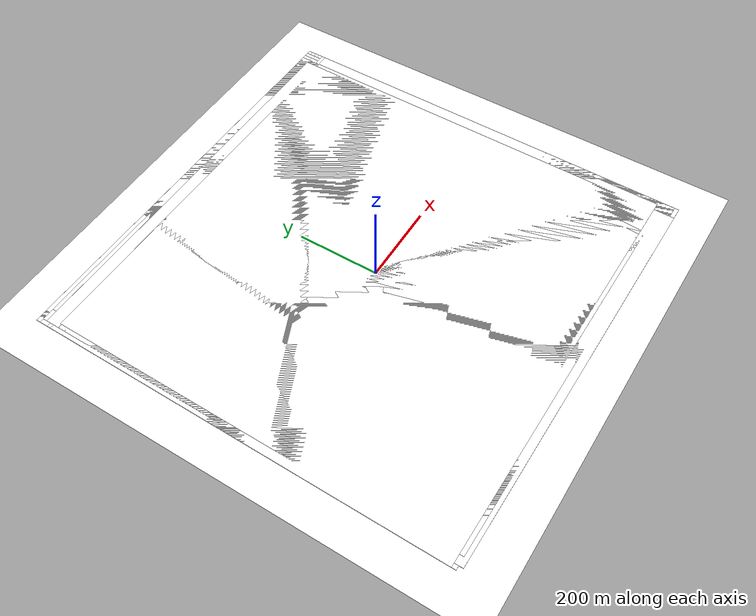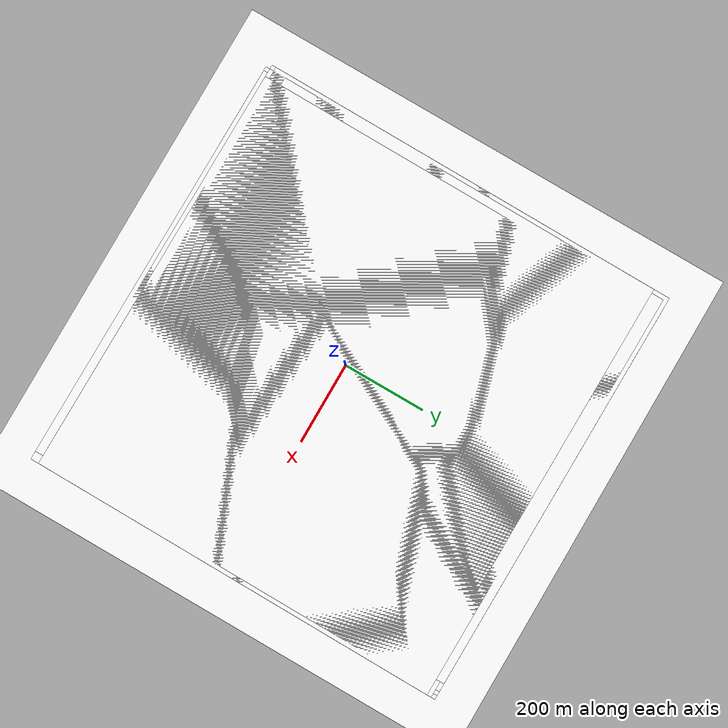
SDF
<sdf version="1.9">
 <world name="cugo_v3_in_forest">
  <plugin filename="ignition-gazebo-physics-system" name="ignition::gazebo::systems::Physics"/>
  <plugin filename="ignition-gazebo-sensors-system" name="ignition::gazebo::systems::Sensors">
   <render_engine>ogre2</render_engine>
  </plugin>
  <plugin filename="ignition-gazebo-scene-broadcaster-system" name="ignition::gazebo::systems::SceneBroadcaster"/>
  <plugin filename="ignition-gazebo-user-commands-system" name="ignition::gazebo::systems::UserCommands"/>
  <scene>
   <ambient>1 1 1 1</ambient>
   <background>0.3 0.7 0.9 1</background>
   <shadows>0</shadows>
   <grid>1</grid>
  </scene>
  <model name="ground_plane">
   <static>1</static>
   <link name="link">
    <collision name="collision">
     <geometry><plane><normal>0 0 1</normal><size>1 1</size></plane></geometry>
    </collision>
   </link>
  </model>
  <include>
   <uri>https://fuel.ignitionrobotics.org/1.0/hexarotor/models/grasspatch</uri>
   <name>grasspatch_0</name>
   <pose>0 0 -0.03 0 -0 -0.006057</pose>
  </include>
  <include>
   <uri>https://fuel.ignitionrobotics.org/1.0/hexarotor/models/grasspatch</uri>
   <name>grasspatch_1</name>
   <pose>10 0 -0.03 0 -0 -0.006057</pose>
  </include>
  <include>
   <uri>https://fuel.ignitionrobotics.org/1.0/hexarotor/models/grasspatch</uri>
   <name>grasspatch_2</name>
   <pose>20 0 -0.03 0 -0 -0.006057</pose>
  </include>
  <include>
   <uri>https://fuel.ignitionrobotics.org/1.0/hexarotor/models/grasspatch</uri>
   <name>grasspatch_3</name>
   <pose>30 0 -0.03 0 -0 -0.006057</pose>
  </include>
  <include>
   <uri>https://fuel.ignitionrobotics.org/1.0/hexarotor/models/grasspatch</uri>
   <name>grasspatch_4</name>
   <pose>40 0 -0.03 0 -0 -0.006057</pose>
  </include>
  <include>
   <uri>https://fuel.ignitionrobotics.org/1.0/hexarotor/models/grasspatch</uri>
   <name>grasspatch_5</name>
   <pose>0 10 -0.03 0 -0 -0.006057</pose>
  </include>
  <include>
   <uri>https://fuel.ignitionrobotics.org/1.0/hexarotor/models/grasspatch</uri>
   <name>grasspatch_6</name>
   <pose>10 10 -0.03 0 -0 -0.006057</pose>
  </include>
  <include>
   <uri>https://fuel.ignitionrobotics.org/1.0/hexarotor/models/grasspatch</uri>
   <name>grasspatch_7</name>
   <pose>20 10 -0.03 0 -0 -0.006057</pose>
  </include>
  <include>
   <uri>https://fuel.ignitionrobotics.org/1.0/hexarotor/models/grasspatch</uri>
   <name>grasspatch_8</name>
   <pose>30 10 -0.03 0 -0 -0.006057</pose>
  </include>
  <include>
   <uri>https://fuel.ignitionrobotics.org/1.0/hexarotor/models/grasspatch</uri>
   <name>grasspatch_9</name>
   <pose>40 10 -0.03 0 -0 -0.006057</pose>
  </include>
  <include>
   <uri>https://fuel.ignitionrobotics.org/1.0/hexarotor/models/grasspatch</uri>
   <name>grasspatch_10</name>
   <pose>0 20 -0.03 0 -0 -0.006057</pose>
  </include>
  <include>
   <uri>https://fuel.ignitionrobotics.org/1.0/hexarotor/models/grasspatch</uri>
   <name>grasspatch_11</name>
   <pose>10 20 -0.03 0 -0 -0.006057</pose>
  </include>
  <include>
   <uri>https://fuel.ignitionrobotics.org/1.0/hexarotor/models/grasspatch</uri>
   <name>grasspatch_12</name>
   <pose>20 20 -0.03 0 -0 -0.006057</pose>
  </include>
  <include>
   <uri>https://fuel.ignitionrobotics.org/1.0/hexarotor/models/grasspatch</uri>
   <name>grasspatch_13</name>
   <pose>30 20 -0.03 0 -0 -0.006057</pose>
  </include>
  <include>
   <uri>https://fuel.ignitionrobotics.org/1.0/hexarotor/models/grasspatch</uri>
   <name>grasspatch_14</name>
   <pose>40 20 -0.03 0 -0 -0.006057</pose>
  </include>
  <include>
   <uri>https://fuel.ignitionrobotics.org/1.0/hexarotor/models/grasspatch</uri>
   <name>grasspatch_15</name>
   <pose>0 30 -0.03 0 -0 -0.006057</pose>
  </include>
  <include>
   <uri>https://fuel.ignitionrobotics.org/1.0/hexarotor/models/grasspatch</uri>
   <name>grasspatch_16</name>
   <pose>10 30 -0.03 0 -0 -0.006057</pose>
  </include>
  <include>
   <uri>https://fuel.ignitionrobotics.org/1.0/hexarotor/models/grasspatch</uri>
   <name>grasspatch_17</name>
   <pose>20 30 -0.03 0 -0 -0.006057</pose>
  </include>
  <include>
   <uri>https://fuel.ignitionrobotics.org/1.0/hexarotor/models/grasspatch</uri>
   <name>grasspatch_18</name>
   <pose>30 30 -0.03 0 -0 -0.006057</pose>
  </include>
  <include>
   <uri>https://fuel.ignitionrobotics.org/1.0/hexarotor/models/grasspatch</uri>
   <name>grasspatch_19</name>
   <pose>40 30 -0.03 0 -0 -0.006057</pose>
  </include>
  <include>
   <uri>https://fuel.ignitionrobotics.org/1.0/hexarotor/models/grasspatch</uri>
   <name>grasspatch_20</name>
   <pose>0 40 -0.03 0 -0 -0.006057</pose>
  </include>
  <include>
   <uri>https://fuel.ignitionrobotics.org/1.0/hexarotor/models/grasspatch</uri>
   <name>grasspatch_21</name>
   <pose>10 40 -0.03 0 -0 -0.006057</pose>
  </include>
  <include>
   <uri>https://fuel.ignitionrobotics.org/1.0/hexarotor/models/grasspatch</uri>
   <name>grasspatch_22</name>
   <pose>20 40 -0.03 0 -0 -0.006057</pose>
  </include>
  <include>
   <uri>https://fuel.ignitionrobotics.org/1.0/hexarotor/models/grasspatch</uri>
   <name>grasspatch_23</name>
   <pose>30 40 -0.03 0 -0 -0.006057</pose>
  </include>
  <include>
   <uri>https://fuel.ignitionrobotics.org/1.0/hexarotor/models/grasspatch</uri>
   <name>grasspatch_24</name>
   <pose>40 40 -0.03 0 -0 -0.006057</pose>
  </include>
  <include>
   <uri>https://fuel.ignitionrobotics.org/1.0/hexarotor/models/grasspatch</uri>
   <name>grasspatch_25</name>
   <pose>0 50 -0.03 0 -0 -0.006057</pose>
  </include>
  <include>
   <uri>https://fuel.ignitionrobotics.org/1.0/hexarotor/models/grasspatch</uri>
   <name>grasspatch_26</name>
   <pose>10 50 -0.03 0 -0 -0.006057</pose>
  </include>
  <include>
   <uri>https://fuel.ignitionrobotics.org/1.0/hexarotor/models/grasspatch</uri>
   <name>grasspatch_27</name>
   <pose>20 50 -0.03 0 -0 -0.006057</pose>
  </include>
  <include>
   <uri>https://fuel.ignitionrobotics.org/1.0/hexarotor/models/grasspatch</uri>
   <name>grasspatch_28</name>
   <pose>30 50 -0.03 0 -0 -0.006057</pose>
  </include>
  <include>
   <uri>https://fuel.ignitionrobotics.org/1.0/hexarotor/models/grasspatch</uri>
   <name>grasspatch_29</name>
   <pose>40 50 -0.03 0 -0 -0.006057</pose>
  </include>
 </world>
</sdf>

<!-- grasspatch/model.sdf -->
<sdf version='1.4'>
  <model name='grasspatch'>
    <static>true</static>
    <link name='link'>
      <collision name='collision'>
        <pose>0 0 0 0 0 0</pose>
        <geometry>
          <plane>
            <normal>0 0 1</normal>
            <size>1000 1000</size>
          </plane>
        </geometry>
        <surface>
          <friction>
            <ode>
              <mu>0.5</mu>
              <mu2>.5</mu2>
            </ode>
          </friction>
        </surface>
      </collision>

      <visual name='visual_s10'>
        <pose>0 0 0 0 0 0</pose>
        <cast_shadows>false</cast_shadows>
        <geometry>
          <plane>
            <normal>0 0 1</normal>
            <size>1000 1000</size>
          </plane>
        </geometry>
          <material>
         <diffuse>1.0 1.0 1.0</diffuse>
          <specular>1.0 1.0 1.0</specular>
		  <pbr>
			<metal>
			   <albedo_map>materials/textures/grass_dry.png</albedo_map>
			   <normal_map>materials/textures/grass_dry.png</normal_map>
			</metal>
		  </pbr>
		</material>
      </visual>

    </link>
  </model>
</sdf>
